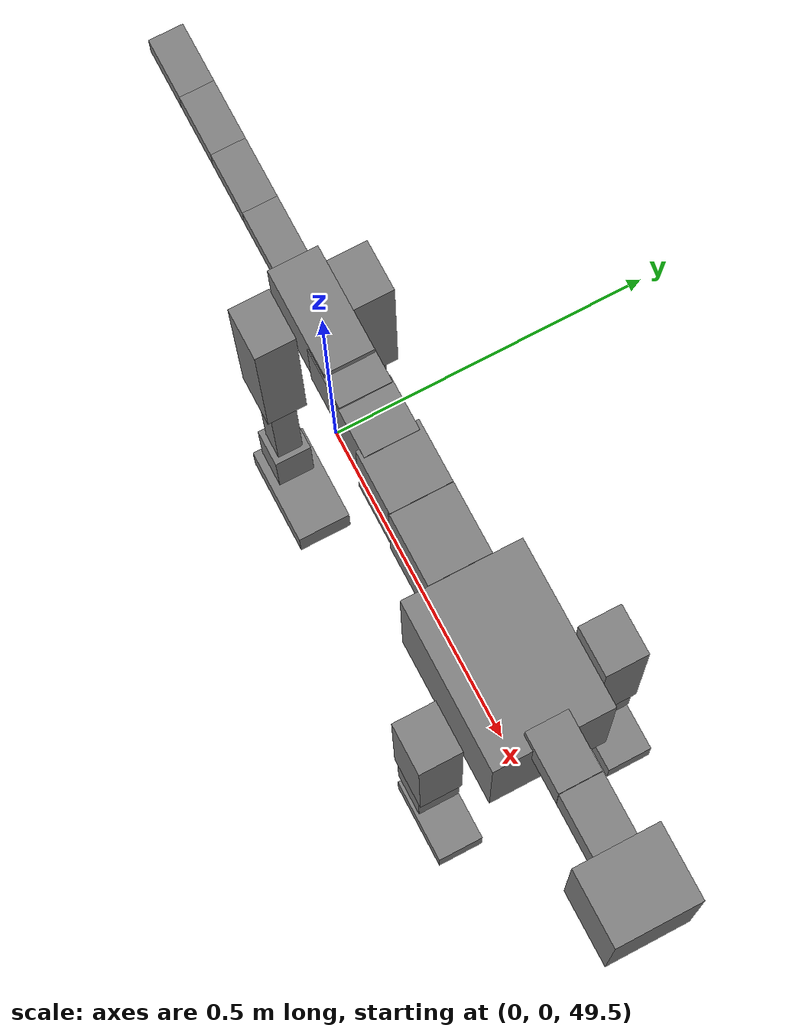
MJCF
<mujoco model="dog">

    <default>
        <joint armature="0.02" stiffness="1" damping="0.2" limited="true"/>
        <geom condim="3" friction="1 0.05 0.05" margin="0.01"/>
        <motor ctrllimited="true" ctrlrange="-1.0 1.0" forcelimited="true" gear="50"/>
    </default>

    <compiler inertiafromgeom="true" angle="radian"/>

    <option timestep="0.016" iterations="50" tolerance="1e-10" solver="Newton" jacobian="dense" cone="pyramidal"/>

    <size nconmax="20000" njmax="60000" nstack="5000000"/>
    <visual>
        <map force="0.1" zfar="30"/>
        <rgba haze="0.15 0.25 0.35 1"/>
        <quality shadowsize="2048"/>
        <global offwidth="800" offheight="800"/>
    </visual>

    <asset>
        <texture type="skybox" builtin="gradient" rgb1="0.3 0.5 0.7" rgb2="0 0 0" width="512" height="512"/>
        <texture name="texplane" type="2d" builtin="checker" rgb1=".2 .3 .4" rgb2=".1 0.15 0.2" width="512" height="512"
                 mark="cross" markrgb=".8 .8 .8"/>
        <texture name="texgeom" type="cube" builtin="flat" mark="cross" width="127" height="1278" rgb1="0.8 0.6 0.4"
                 rgb2="0.8 0.6 0.4" markrgb="1 1 1" random="0.01"/>

        <material name="matplane" reflectance="0.3" texture="texplane" texrepeat="1 1" texuniform="true"/>
        <material name="matgeom" texture="texgeom" texuniform="true" rgba="0.8 0.6 .4 1"/>
    </asset>

    <worldbody>
        <geom name="floor" pos="0 0 0" size="0 0 .25" type="plane" material="matplane" condim="3"/>

        <light directional="false" diffuse=".2 .2 .2" specular="0 0 0" pos="0 0 5" dir="0 0 -1" castshadow="false"/>
        <light mode="targetbodycom" target="torso" directional="false" diffuse=".8 .8 .8" specular="0.3 0.3 0.3"
               pos="0 0 4.0" dir="0 0 -1"/>

        <body name="root" pos="0 0 50">
            <freejoint name="root_1"/>
            <geom type="box" pos="0 0 -0.02" size="0.0774  0.0358  0.063" density="2030"/>

            <body name="spine1" pos="0.054 0 0">
                <joint name="spine1_y" axis="0 1 0" range="0 0.7" limited="true"/>
                <geom type="box" pos="0.02375 0 -0.03" size="0.04375  0.0375  0.05985" density="2030"/>

                <body name="spine2" pos="0.0612 0 0">
                    <joint name="spine2_y" axis="0 1 0" range="-0.15 0.15" limited="true"/>
                    <geom type="box" pos="0.03555  0  -0.04" size="0.04055  0.039  0.06615" density="2030"/>

                    <body name="spine3" pos="0.0730 0 0">
                        <joint name="spine3_y" axis="0 1 0" range="-0.15 0.15" limited="true"/>
                        <geom type="box" pos="0.03555  0  -0.057" size="0.04555  0.0445  0.081" density="2030"/>

                        <body name="spine4" pos="0.0780 0 0">
                            <joint name="spine4_y" axis="0 1 0" range="-0.15 0.15" limited="true"/>
                            <geom type="box" pos="0.05265  0  -0.07" size="0.05265  0.045  0.09135" density="2030"/>

                            <body name="torso" pos="0.1082 0 0">
                                <joint name="torso_y" axis="0 1 0" range="-0.15 0.15" limited="true"/>
                                <geom type="box" pos="0.11925  0  -0.085" size="0.11925  0.085  0.11745"
                                      density="2030"/>

                                <body name="neck1" pos="0.2160  0   0.0180">
                                    <joint name="neck1_y" axis="0 1 0" range="-1.2  -1" limited="true"/>
                                    <geom type="box" pos="0.0423  0  0" size="0.0423  0.03  0.036" density="2325"/>

                                    <body name="neck2" pos="0.0853  0  0">
                                        <joint name="neck2_y" axis="0 1 0" range="0.1  0" limited="true"/>
                                        <geom type="box" pos="0.0423  0  0" size="0.0423  0.03  0.036" density="2325"/>

                                        <body name="head" pos="0.0853  0  0">
                                            <joint name="head_y" axis="0 1 0" range="-0.3  -0.2" limited="true"/>
                                            <geom type="box" pos="0.0531  0  -0.055" size="0.0531  0.06  0.1044"
                                                  density="4030"/>

                                        </body>
                                    </body>
                                </body>

                                <body name="front_shoulder" pos="0.156  0   -0.0480">
                                    <joint name="front_shoulder_y" axis="0 1 0" range="-1 1.5" limited="true"/>
                                    <geom type="box" pos="0 0.13 -0.1000" size="0.0360  0.0308  0.1267" density="1158"/>
                                    <geom type="box" pos="0 -0.13 -0.1000" size="0.0360  0.0308  0.1267"
                                          density="1158"/>

                                    <body name="front_elbow" pos="0  0  -0.2000">
                                        <joint name="front_elbow_y" axis="0 1 0" range="-2 0" limited="true"/>
                                        <geom type="box" pos="0 0.13 -0.0623" size="0.0294  0.0300  0.0623"
                                              density="1081"/>
                                        <geom type="box" pos="0 -0.13 -0.0623" size="0.0294  0.0300  0.0623"
                                              density="1081"/>

                                        <body name="front_wrist" pos="0  0  -0.1246">
                                            <joint name="front_wrist_y" axis="0 1 0" range="-0.2 0" limited="true"/>
                                            <geom type="box" pos="0 0.13 -0.0238" size="0.0211  0.0234  0.0370"
                                                  density="1664"/>
                                            <geom type="box" pos="0 -0.13 -0.0238" size="0.0211  0.0234  0.0370"
                                                  density="1664"/>

                                            <body name="front_finger_end" pos="0  0  -0.0477">
                                                <joint name="front_finger_y" axis="0 1 0" range="-0.4 1"
                                                       limited="true"/>
                                                <geom type="box" pos="0.0328  0.13  -0.0102"
                                                      size="0.0601  0.0328  0.0252" density="1515"/>
                                                <geom type="box" pos="0.0328  -0.13  -0.0102"
                                                      size="0.0601  0.0328  0.0252" density="1515"/>

                                            </body>

                                        </body>
                                    </body>
                                </body>

                            </body>
                        </body>
                    </body>
                </body>
            </body>

            <body name="back_hip" pos="-0.03 0 -0.018">
                <joint name="back_hip_y" axis="0 1 0" range="-1.5 0.3" limited="true"/>
                <geom type="box" pos="0 0.07 -0.1191" size="0.0376  0.0295  0.1419" density="1154"/>
                <geom type="box" pos="0 -0.07 -0.1191" size="0.0376  0.0295  0.1419" density="1154"/>

                <body name="back_knee" pos="0  0  -0.2382">
                    <joint name="back_knee_y" axis="0 1 0" range="0 2.8" limited="true"/>
                    <geom type="box" pos="0 0.07 -0.1333" size="0.0198  0.0195  0.1489" density="1227"/>
                    <geom type="box" pos="0 -0.07 -0.1333" size="0.0198  0.0195  0.1489" density="1227"/>

                    <body name="back_ankle" pos="0  0  -0.2667">
                        <joint name="back_ankle_y" axis="0 1 0" range="-2.2 0" limited="true"/>
                        <geom type="box" pos="0 0.07 -0.0557" size="0.0283  0.0283  0.0669" density="1284"/>
                        <geom type="box" pos="0 -0.07 -0.0557" size="0.0283  0.0283  0.0669" density="1284"/>

                        <body name="back_toe_end" pos="0  0  -0.1114">
                            <joint name="back_toe_y" axis="0 1 0" range="-0.4 1" limited="true"/>
                            <geom type="box" pos="0.0411  0.07  -0.0142" size="0.0754  0.0411  0.0292" density="1515"/>
                            <geom type="box" pos="0.0411  -0.07  -0.0142" size="0.0754  0.0411  0.0292" density="1515"/>

                        </body>
                    </body>
                </body>
            </body>

            <body name="tail1" pos="-0.074 0 -0.006">
                <joint name="tail1_y" axis="0 1 0" range="-0.2 0.2" limited="true"/>
                <geom type="box" pos="-0.0536  0  0" size="0.045  0.025  0.0175" density="1587"/>

                <body name="tail2" pos="-0.09 0 0">
                    <joint name="tail2_y" axis="0 1 0" range="-0.2 0.2" limited="true"/>
                    <geom type="box" pos="-0.0536  0  0" size="0.045  0.025  0.0175" density="1587"/>

                    <body name="tail3" pos="-0.09 0 0">
                        <joint name="tail3_y" axis="0 1 0" range="-0.2 0.2" limited="true"/>
                        <geom type="box" pos="-0.0536  0  0" size="0.045  0.025  0.0175" density="1587"/>

                        <body name="tail4" pos="-0.09 0 0">
                            <joint name="tail4_y" axis="0 1 0" range="-0.2 0.2" limited="true"/>
                            <geom type="box" pos="-0.0536  0  0" size="0.045  0.025  0.0175" density="1587"/>

                        </body>
                    </body>
                </body>
            </body>
        </body>
    </worldbody>

    <actuator>
        <motor joint="spine1_y" forcerange="-150 150     "/>
        <motor joint="spine2_y" forcerange="-150 150     "/>
        <motor joint="spine3_y" forcerange="-150 150     "/>
        <motor joint="spine4_y" forcerange="-150 150     "/>
        <motor joint="torso_y" forcerange="-150 150     "/>
        <motor joint="neck1_y" forcerange="-100 100       "/>
        <motor joint="neck2_y" forcerange="-100 100       "/>
        <motor joint="head_y" forcerange="-150 150       "/>
        <motor joint="front_shoulder_y" forcerange="-122.37 183.02"/>
        <motor joint="front_elbow_y" forcerange="-129.23 189.20"/>
        <motor joint="front_wrist_y" forcerange="-116.17 71.10"/>
        <motor joint="front_finger_y" forcerange="-51.63 83.12"/>
        <motor joint="back_hip_y" forcerange="-392.06 200.99"/>
        <motor joint="back_knee_y" forcerange="-237.30 246.33"/>
        <motor joint="back_angle_y" forcerange="-218.00 134.13"/>
        <motor joint="back_toe_y" forcerange="-118.42 130.54"/>
        <motor joint="tail1_y" forcerange="-50 50     "/>
        <motor joint="tail2_y" forcerange="-50 50     "/>
        <motor joint="tail3_y" forcerange="-50 50     "/>
        <motor joint="tail4_y" forcerange="-50 50     "/>
    </actuator>
</mujoco>
